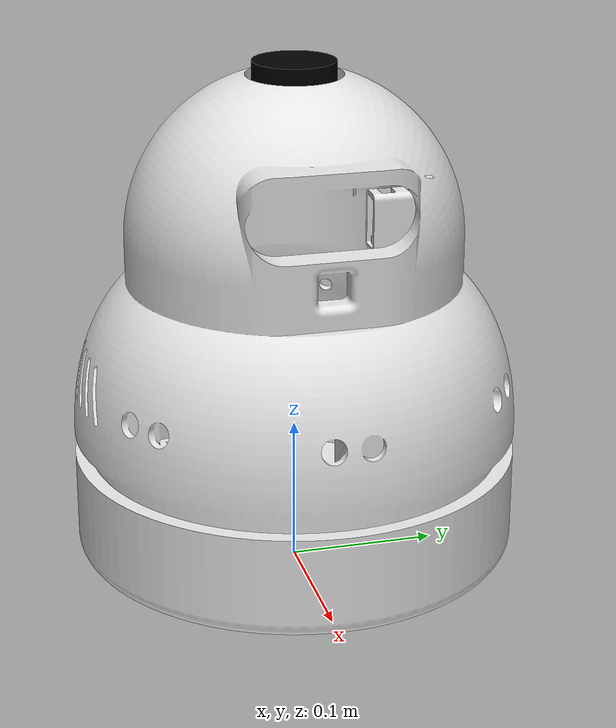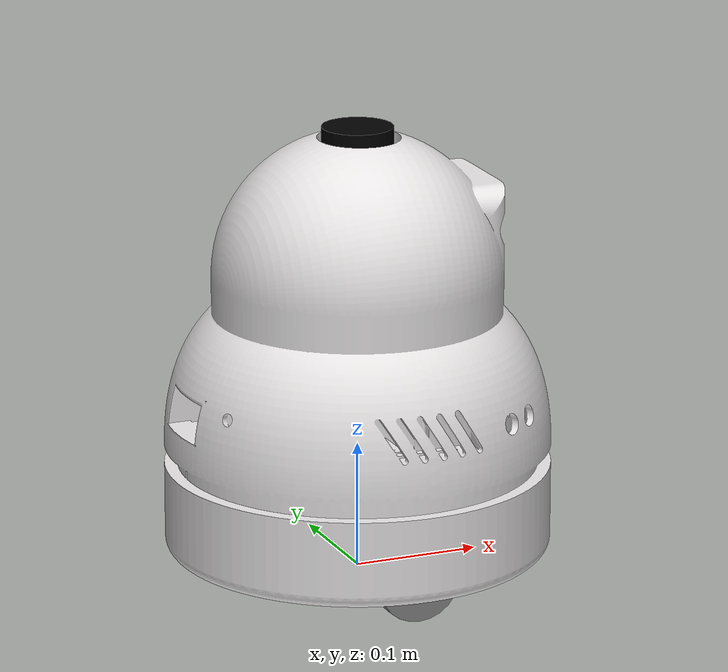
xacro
<?xml version="1.0"?>
<robot name="sparkie" xmlns:xacro="http://ros.org/wiki/xacro">

    <!-- Constants -->

    <xacro:property name="base_radius" value="0.150" />
    <xacro:property name="base_height" value="0.030" />

    <!-- All components positions are refered to the base link center point -->

    <xacro:property name="wheel_radius" value="0.0335" />
    <xacro:property name="wheel_width" value="0.026" />
    <xacro:property name="wheel_pos_x" value="0.1091" />
    <xacro:property name="wheel_pos_y" value="0" />
    <xacro:property name="wheel_pos_z" value="-0.0025" />

    <xacro:property name="lidar_radius" value="0.0278" />
    <xacro:property name="lidar_height" value="0.0144" />
    <xacro:property name="lidar_pos_x" value="0.0" />
    <xacro:property name="lidar_pos_y" value="0.0" />
    <xacro:property name="lidar_pos_z" value="0.316" />

    <xacro:property name="us_pos_x" value="0.0" />
    <xacro:property name="us_pos_y" value="0.129" />
    <xacro:property name="us_pos_z" value="0.113" />
    <xacro:property name="us_angle" value="54.5" />

    <xacro:property name="camera_pos_x" value="0.0" />
    <xacro:property name="camera_pos_y" value="0.09051" />
    <xacro:property name="camera_pos_z" value="0.240" />

    <xacro:property name="board_pos_x" value="0.0" />
    <xacro:property name="board_pos_y" value="0.0" />
    <xacro:property name="board_pos_z" value="0.098" />

    <!-- Links -->

    <link name="base_link">
        <visual>
            <geometry>
                <mesh filename="package://sparkie_description/meshes/main_body.obj" scale="0.001 0.001 0.001" />
            </geometry>
            <material name="White">
                <color rgba="0.91 0.9 0.9 1.0" />
            </material>
        </visual>

        <inertial>
            <mass value="5" />
            <origin xyz="0 0 0" rpy="0 0 0" />
            <inertia ixx="0.004" ixy="0.001" ixz="0" iyy="0.006" iyz="0" izz="0.007" />
        </inertial>

        <collision>
            <geometry>
                <cylinder radius="0.03" length="0.06"/>
            </geometry>
        </collision>
    </link>

    <link name="base_footprint"></link>

    <joint name="base_joint" type="fixed">
        <origin xyz="0.0 0.0 ${+(wheel_pos_z + wheel_radius)}" rpy="0.0 0.0 ${-pi/2}" />
        <parent link="base_footprint" />
        <child link="base_link" />
    </joint>

    <!-- Wheels -->

    <xacro:macro name="wheel" params="prefix x_reflect">
        <link name="${prefix}_wheel_link">
            <visual>
                <origin rpy="${pi/2} 0.0 ${pi/2}" />
                <geometry>
                    <cylinder radius="${wheel_radius}" length="${wheel_width}" />
                </geometry>
                <material name="Gray">
                    <color rgba="0.5 0.5 0.5 1.0" />
                </material>
            </visual>
        </link>

        <joint name="${prefix}_wheel_joint" type="fixed">
            <parent link="base_link" />
            <child link="${prefix}_wheel_link" />
            <origin xyz="${x_reflect * (wheel_pos_x)} ${wheel_pos_y} ${wheel_pos_z}" />
            <axis xyz="1.0 0.0 0.0" />
        </joint>
    </xacro:macro>

    <xacro:wheel prefix="left" x_reflect="1.0" />
    <xacro:wheel prefix="right" x_reflect="-1.0" />

    <!-- Lidar -->

    <link name="lidar_link">
        <visual>
            <geometry>
                <cylinder radius="${lidar_radius}" length="${lidar_height}" />
            </geometry>
            <material name="Black">
                <color rgba="0.0 0.0 0.0 1.0" />
            </material>
        </visual>
    </link>

    <joint name="lidar_joint" type="fixed">
        <origin xyz="${lidar_pos_x} ${lidar_pos_y} ${lidar_pos_z}" rpy="0.0 0.0 ${-pi/2 - 0.05}" />
        <parent link="base_link" />
        <child link="lidar_link" />
    </joint>

    <!-- Ultrasonic Sensor -->

    <xacro:macro name="us_sensor" params="type angle">

        <link name="us_${type}"></link>

        <joint name="${type}_us_joint" type="fixed">
            <origin
                xyz="${us_pos_y * cos(pi/2 + pi*(angle)/180)} ${us_pos_y * sin(pi/2 + pi*(angle)/180)} ${us_pos_z}"
                rpy="0.0 0.0  ${pi*(90 + angle)/180}" />
            <parent link="base_link" />
            <child link="us_${type}" />
        </joint>

    </xacro:macro>

    <xacro:us_sensor type="left" angle="${us_angle}" />
    <xacro:us_sensor type="front" angle="0.0" />
    <xacro:us_sensor type="right" angle="${-us_angle}" />

    <!-- Board -->

    <link name="board_link"></link>

    <joint name="board_joint" type="fixed">
        <origin xyz="${board_pos_x} ${board_pos_y} ${board_pos_z}" rpy="0.0 0.0 0.0" />
        <parent link="base_link" />
        <child link="board_link" />
    </joint>

    <!-- Camera -->

    <link name="camera_link"></link>

    <joint name="camera_joint" type="fixed">
        <origin xyz="${camera_pos_x} ${camera_pos_y} ${camera_pos_z}" rpy="0.0 0.0 ${pi/2}" />
        <parent link="base_link" />
        <child link="camera_link" />
    </joint>

</robot>
